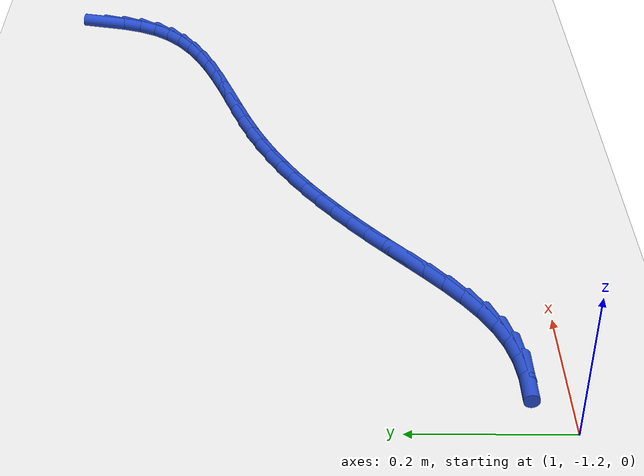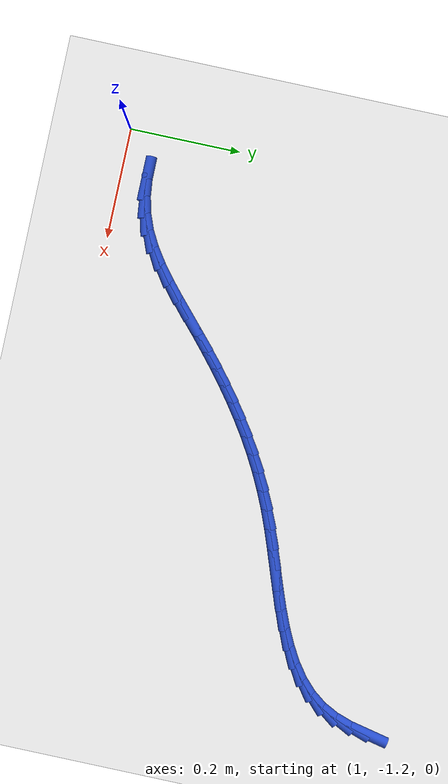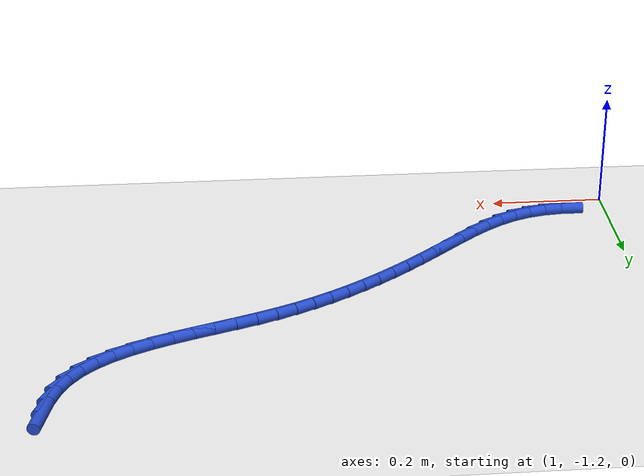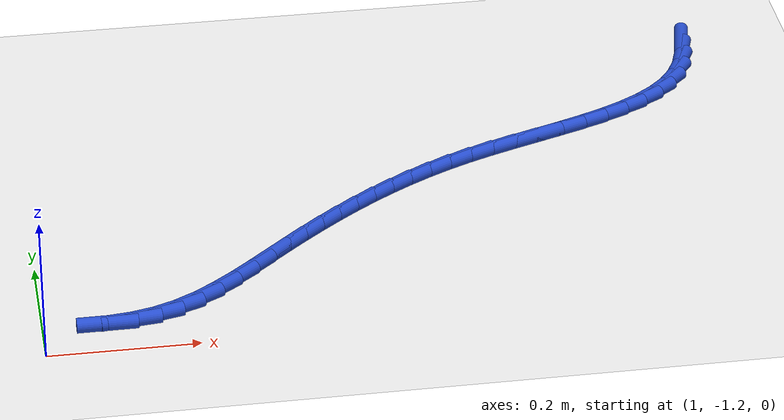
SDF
<sdf version="1.6">
 <world name="default">
  <model name="ground_plane">
   <static>1</static>
   <link name="link">
    <collision name="collision">
     <geometry><plane><normal>0 0 1</normal><size>100 100</size></plane></geometry>
     <surface><friction><ode><mu>100</mu><mu2>50</mu2></ode></friction></surface>
    </collision>
    <visual name="visual">
     <cast_shadows>0</cast_shadows>
     <geometry><plane><normal>0 0 1</normal><size>100 100</size></plane></geometry>
     <material>
      <script><uri>file://media/materials/scripts/gazebo.material</uri><name>Gazebo/WhiteGlow</name></script>
     </material>
    </visual>
   </link>
  </model>
  <model name="line">
   <link name="link_116">
    <pose>1.9686055905843003 -0.5601693737823147 0.01 0 1.57 1.3575423400119502</pose>
    <collision name="collision">
     <geometry><cylinder><radius>0.01</radius><length>0.08</length></cylinder></geometry>
    </collision>
    <visual name="visual">
     <material>
      <script><name>Gazebo/Blue</name><uri>file://media/materials/scripts/gazebo.material</uri></script>
     </material>
     <geometry><cylinder><radius>0.01</radius><length>0.08</length></cylinder></geometry>
    </visual>
   </link>
   <link name="link_117">
    <pose>1.9617405198212623 -0.5918718791710915 0.01 0 1.57 1.2454906339012317</pose>
    <collision name="collision">
     <geometry><cylinder><radius>0.01</radius><length>0.08</length></cylinder></geometry>
    </collision>
    <visual name="visual">
     <material>
      <script><name>Gazebo/Blue</name><uri>file://media/materials/scripts/gazebo.material</uri></script>
     </material>
     <geometry><cylinder><radius>0.01</radius><length>0.08</length></cylinder></geometry>
    </visual>
   </link>
   <link name="link_118">
    <pose>1.9517967211643978 -0.6213534884740581 0.01 0 1.57 1.100402484123581</pose>
    <collision name="collision">
     <geometry><cylinder><radius>0.01</radius><length>0.08</length></cylinder></geometry>
    </collision>
    <visual name="visual">
     <material>
      <script><name>Gazebo/Blue</name><uri>file://media/materials/scripts/gazebo.material</uri></script>
     </material>
     <geometry><cylinder><radius>0.01</radius><length>0.08</length></cylinder></geometry>
    </visual>
   </link>
   <link name="link_119">
    <pose>1.938155547294664 -0.6481818223606184 0.01 0 1.57 0.9271724663885832</pose>
    <collision name="collision">
     <geometry><cylinder><radius>0.01</radius><length>0.08</length></cylinder></geometry>
    </collision>
    <visual name="visual">
     <material>
      <script><name>Gazebo/Blue</name><uri>file://media/materials/scripts/gazebo.material</uri></script>
     </material>
     <geometry><cylinder><radius>0.01</radius><length>0.08</length></cylinder></geometry>
    </visual>
   </link>
   <link name="link_120">
    <pose>1.920293264801803 -0.6719921093922279 0.01 0 1.57 0.7638486334891992</pose>
    <collision name="collision">
     <geometry><cylinder><radius>0.01</radius><length>0.08</length></cylinder></geometry>
    </collision>
    <visual name="visual">
     <material>
      <script><name>Gazebo/Blue</name><uri>file://media/materials/scripts/gazebo.material</uri></script>
     </material>
     <geometry><cylinder><radius>0.01</radius><length>0.08</length></cylinder></geometry>
    </visual>
   </link>
   <link name="link_121">
    <pose>1.89842005497322 -0.692942351096798 0.01 0 1.57 0.6305673358988613</pose>
    <collision name="collision">
     <geometry><cylinder><radius>0.01</radius><length>0.08</length></cylinder></geometry>
    </collision>
    <visual name="visual">
     <material>
      <script><name>Gazebo/Blue</name><uri>file://media/materials/scripts/gazebo.material</uri></script>
     </material>
     <geometry><cylinder><radius>0.01</radius><length>0.08</length></cylinder></geometry>
    </visual>
   </link>
   <link name="link_122">
    <pose>1.873088179550408 -0.7114342154859888 0.01 0 1.57 0.5271572602281289</pose>
    <collision name="collision">
     <geometry><cylinder><radius>0.01</radius><length>0.08</length></cylinder></geometry>
    </collision>
    <visual name="visual">
     <material>
      <script><name>Gazebo/Blue</name><uri>file://media/materials/scripts/gazebo.material</uri></script>
     </material>
     <geometry><cylinder><radius>0.01</radius><length>0.08</length></cylinder></geometry>
    </visual>
   </link>
   <link name="link_123">
    <pose>1.8448518162766303 -0.7278707353539504 0.01 0 1.57 0.4502428053510826</pose>
    <collision name="collision">
     <geometry><cylinder><radius>0.01</radius><length>0.08</length></cylinder></geometry>
    </collision>
    <visual name="visual">
     <material>
      <script><name>Gazebo/Blue</name><uri>file://media/materials/scripts/gazebo.material</uri></script>
     </material>
     <geometry><cylinder><radius>0.01</radius><length>0.08</length></cylinder></geometry>
    </visual>
   </link>
   <link name="link_124">
    <pose>1.8142651428951495 -0.7426549434948332 0.01 0 1.57 0.3958981910060032</pose>
    <collision name="collision">
     <geometry><cylinder><radius>0.01</radius><length>0.08</length></cylinder></geometry>
    </collision>
    <visual name="visual">
     <material>
      <script><name>Gazebo/Blue</name><uri>file://media/materials/scripts/gazebo.material</uri></script>
     </material>
     <geometry><cylinder><radius>0.01</radius><length>0.08</length></cylinder></geometry>
    </visual>
   </link>
   <link name="link_125">
    <pose>1.7818823371492278 -0.7561898727027867 0.01 0 1.57 0.36083923666967826</pose>
    <collision name="collision">
     <geometry><cylinder><radius>0.01</radius><length>0.08</length></cylinder></geometry>
    </collision>
    <visual name="visual">
     <material>
      <script><name>Gazebo/Blue</name><uri>file://media/materials/scripts/gazebo.material</uri></script>
     </material>
     <geometry><cylinder><radius>0.01</radius><length>0.08</length></cylinder></geometry>
    </visual>
   </link>
   <link name="link_126">
    <pose>1.7482575767821278 -0.7688785557719618 0.01 0 1.57 0.3427910943888196</pose>
    <collision name="collision">
     <geometry><cylinder><radius>0.01</radius><length>0.08</length></cylinder></geometry>
    </collision>
    <visual name="visual">
     <material>
      <script><name>Gazebo/Blue</name><uri>file://media/materials/scripts/gazebo.material</uri></script>
     </material>
     <geometry><cylinder><radius>0.01</radius><length>0.08</length></cylinder></geometry>
    </visual>
   </link>
   <link name="link_127">
    <pose>1.7139450395371125 -0.7811240254965082 0.01 0 1.57 0.34052679395526725</pose>
    <collision name="collision">
     <geometry><cylinder><radius>0.01</radius><length>0.08</length></cylinder></geometry>
    </collision>
    <visual name="visual">
     <material>
      <script><name>Gazebo/Blue</name><uri>file://media/materials/scripts/gazebo.material</uri></script>
     </material>
     <geometry><cylinder><radius>0.01</radius><length>0.08</length></cylinder></geometry>
    </visual>
   </link>
   <link name="link_128">
    <pose>1.6794989031574439 -0.793329314670576 0.01 0 1.57 0.3538288000289204</pose>
    <collision name="collision">
     <geometry><cylinder><radius>0.01</radius><length>0.08</length></cylinder></geometry>
    </collision>
    <visual name="visual">
     <material>
      <script><name>Gazebo/Blue</name><uri>file://media/materials/scripts/gazebo.material</uri></script>
     </material>
     <geometry><cylinder><radius>0.01</radius><length>0.08</length></cylinder></geometry>
    </visual>
   </link>
   <link name="link_129">
    <pose>1.6454733453863848 -0.805897456088315 0.01 0 1.57 0.38342863469916616</pose>
    <collision name="collision">
     <geometry><cylinder><radius>0.01</radius><length>0.08</length></cylinder></geometry>
    </collision>
    <visual name="visual">
     <material>
      <script><name>Gazebo/Blue</name><uri>file://media/materials/scripts/gazebo.material</uri></script>
     </material>
     <geometry><cylinder><radius>0.01</radius><length>0.08</length></cylinder></geometry>
    </visual>
   </link>
   <link name="link_130">
    <pose>1.6124210565357042 -0.8192305443370616 0.01 0 1.57 0.42507864372939835</pose>
    <collision name="collision">
     <geometry><cylinder><radius>0.01</radius><length>0.08</length></cylinder></geometry>
    </collision>
    <visual name="visual">
     <material>
      <script><name>Gazebo/Blue</name><uri>file://media/materials/scripts/gazebo.material</uri></script>
     </material>
     <geometry><cylinder><radius>0.01</radius><length>0.08</length></cylinder></geometry>
    </visual>
   </link>
   <link name="link_131">
    <pose>1.5806834942322852 -0.8335974376533065 0.01 0 1.57 0.4674330868601432</pose>
    <collision name="collision">
     <geometry><cylinder><radius>0.01</radius><length>0.08</length></cylinder></geometry>
    </collision>
    <visual name="visual">
     <material>
      <script><name>Gazebo/Blue</name><uri>file://media/materials/scripts/gazebo.material</uri></script>
     </material>
     <geometry><cylinder><radius>0.01</radius><length>0.08</length></cylinder></geometry>
    </visual>
   </link>
   <link name="link_132">
    <pose>1.550173883892242 -0.8489968841004494 0.01 0 1.57 0.5084867903434858</pose>
    <collision name="collision">
     <geometry><cylinder><radius>0.01</radius><length>0.08</length></cylinder></geometry>
    </collision>
    <visual name="visual">
     <material>
      <script><name>Gazebo/Blue</name><uri>file://media/materials/scripts/gazebo.material</uri></script>
     </material>
     <geometry><cylinder><radius>0.01</radius><length>0.08</length></cylinder></geometry>
    </visual>
   </link>
   <link name="link_133">
    <pose>1.5207536429093644 -0.8653949535044155 0.01 0 1.57 0.547647724250191</pose>
    <collision name="collision">
     <geometry><cylinder><radius>0.01</radius><length>0.08</length></cylinder></geometry>
    </collision>
    <visual name="visual">
     <material>
      <script><name>Gazebo/Blue</name><uri>file://media/materials/scripts/gazebo.material</uri></script>
     </material>
     <geometry><cylinder><radius>0.01</radius><length>0.08</length></cylinder></geometry>
    </visual>
   </link>
   <link name="link_134">
    <pose>1.492284188677442 -0.88275771569113 0.01 0 1.57 0.5843732271783775</pose>
    <collision name="collision">
     <geometry><cylinder><radius>0.01</radius><length>0.08</length></cylinder></geometry>
    </collision>
    <visual name="visual">
     <material>
      <script><name>Gazebo/Blue</name><uri>file://media/materials/scripts/gazebo.material</uri></script>
     </material>
     <geometry><cylinder><radius>0.01</radius><length>0.08</length></cylinder></geometry>
    </visual>
   </link>
   <link name="link_135">
    <pose>1.464626938590264 -0.9010512404865182 0.01 0 1.57 0.6181934296219314</pose>
    <collision name="collision">
     <geometry><cylinder><radius>0.01</radius><length>0.08</length></cylinder></geometry>
    </collision>
    <visual name="visual">
     <material>
      <script><name>Gazebo/Blue</name><uri>file://media/materials/scripts/gazebo.material</uri></script>
     </material>
     <geometry><cylinder><radius>0.01</radius><length>0.08</length></cylinder></geometry>
    </visual>
   </link>
   <link name="link_136">
    <pose>1.4376433100416197 -0.9202415977165047 0.01 0 1.57 0.6487270177943738</pose>
    <collision name="collision">
     <geometry><cylinder><radius>0.01</radius><length>0.08</length></cylinder></geometry>
    </collision>
    <visual name="visual">
     <material>
      <script><name>Gazebo/Blue</name><uri>file://media/materials/scripts/gazebo.material</uri></script>
     </material>
     <geometry><cylinder><radius>0.01</radius><length>0.08</length></cylinder></geometry>
    </visual>
   </link>
   <link name="link_137">
    <pose>1.4111947204252981 -0.940294857207015 0.01 0 1.57 0.6756887183087963</pose>
    <collision name="collision">
     <geometry><cylinder><radius>0.01</radius><length>0.08</length></cylinder></geometry>
    </collision>
    <visual name="visual">
     <material>
      <script><name>Gazebo/Blue</name><uri>file://media/materials/scripts/gazebo.material</uri></script>
     </material>
     <geometry><cylinder><radius>0.01</radius><length>0.08</length></cylinder></geometry>
    </visual>
   </link>
   <link name="link_138">
    <pose>1.3851425871350898 -0.9611770887839741 0.01 0 1.57 0.6988892502437476</pose>
    <collision name="collision">
     <geometry><cylinder><radius>0.01</radius><length>0.08</length></cylinder></geometry>
    </collision>
    <visual name="visual">
     <material>
      <script><name>Gazebo/Blue</name><uri>file://media/materials/scripts/gazebo.material</uri></script>
     </material>
     <geometry><cylinder><radius>0.01</radius><length>0.08</length></cylinder></geometry>
    </visual>
   </link>
   <link name="link_139">
    <pose>1.3593483275647833 -0.9828543622733078 0.01 0 1.57 0.7182294029282508</pose>
    <collision name="collision">
     <geometry><cylinder><radius>0.01</radius><length>0.08</length></cylinder></geometry>
    </collision>
    <visual name="visual">
     <material>
      <script><name>Gazebo/Blue</name><uri>file://media/materials/scripts/gazebo.material</uri></script>
     </material>
     <geometry><cylinder><radius>0.01</radius><length>0.08</length></cylinder></geometry>
    </visual>
   </link>
   <link name="link_140">
    <pose>1.3336733591081686 -1.0052927475009403 0.01 0 1.57 0.7329647668794995</pose>
    <collision name="collision">
     <geometry><cylinder><radius>0.01</radius><length>0.08</length></cylinder></geometry>
    </collision>
    <visual name="visual">
     <material>
      <script><name>Gazebo/Blue</name><uri>file://media/materials/scripts/gazebo.material</uri></script>
     </material>
     <geometry><cylinder><radius>0.01</radius><length>0.08</length></cylinder></geometry>
    </visual>
   </link>
   <link name="link_141">
    <pose>1.3079781555197973 -1.028425392340058 0.01 0 1.57 0.7333251198703116</pose>
    <collision name="collision">
     <geometry><cylinder><radius>0.01</radius><length>0.08</length></cylinder></geometry>
    </collision>
    <visual name="visual">
     <material>
      <script><name>Gazebo/Blue</name><uri>file://media/materials/scripts/gazebo.material</uri></script>
     </material>
     <geometry><cylinder><radius>0.01</radius><length>0.08</length></cylinder></geometry>
    </visual>
   </link>
   <link name="link_142">
    <pose>1.2821101501609526 -1.0517304877337006 0.01 0 1.57 0.7122276200090588</pose>
    <collision name="collision">
     <geometry><cylinder><radius>0.01</radius><length>0.08</length></cylinder></geometry>
    </collision>
    <visual name="visual">
     <material>
      <script><name>Gazebo/Blue</name><uri>file://media/materials/scripts/gazebo.material</uri></script>
     </material>
     <geometry><cylinder><radius>0.01</radius><length>0.08</length></cylinder></geometry>
    </visual>
   </link>
   <link name="link_143">
    <pose>1.2559072627154322 -1.07435430875285 0.01 0 1.57 0.6683419759312133</pose>
    <collision name="collision">
     <geometry><cylinder><radius>0.01</radius><length>0.08</length></cylinder></geometry>
    </collision>
    <visual name="visual">
     <material>
      <script><name>Gazebo/Blue</name><uri>file://media/materials/scripts/gazebo.material</uri></script>
     </material>
     <geometry><cylinder><radius>0.01</radius><length>0.08</length></cylinder></geometry>
    </visual>
   </link>
   <link name="link_144">
    <pose>1.229207196628773 -1.0954355862868206 0.01 0 1.57 0.5989983353102758</pose>
    <collision name="collision">
     <geometry><cylinder><radius>0.01</radius><length>0.08</length></cylinder></geometry>
    </collision>
    <visual name="visual">
     <material>
      <script><name>Gazebo/Blue</name><uri>file://media/materials/scripts/gazebo.material</uri></script>
     </material>
     <geometry><cylinder><radius>0.01</radius><length>0.08</length></cylinder></geometry>
    </visual>
   </link>
   <link name="link_145">
    <pose>1.2018476553465105 -1.1141130512249267 0.01 0 1.57 0.5004606893503422</pose>
    <collision name="collision">
     <geometry><cylinder><radius>0.01</radius><length>0.08</length></cylinder></geometry>
    </collision>
    <visual name="visual">
     <material>
      <script><name>Gazebo/Blue</name><uri>file://media/materials/scripts/gazebo.material</uri></script>
     </material>
     <geometry><cylinder><radius>0.01</radius><length>0.08</length></cylinder></geometry>
    </visual>
   </link>
   <link name="link_146">
    <pose>1.1736663423141807 -1.129525434456483 0.01 0 1.57 0.37131438492687996</pose>
    <collision name="collision">
     <geometry><cylinder><radius>0.01</radius><length>0.08</length></cylinder></geometry>
    </collision>
    <visual name="visual">
     <material>
      <script><name>Gazebo/Blue</name><uri>file://media/materials/scripts/gazebo.material</uri></script>
     </material>
     <geometry><cylinder><radius>0.01</radius><length>0.08</length></cylinder></geometry>
    </visual>
   </link>
   <link name="link_147">
    <pose>1.144514822680072 -1.1408763380798594 0.01 0 1.57 0.23492507473466498</pose>
    <collision name="collision">
     <geometry><cylinder><radius>0.01</radius><length>0.08</length></cylinder></geometry>
    </collision>
    <visual name="visual">
     <material>
      <script><name>Gazebo/Blue</name><uri>file://media/materials/scripts/gazebo.material</uri></script>
     </material>
     <geometry><cylinder><radius>0.01</radius><length>0.08</length></cylinder></geometry>
    </visual>
   </link>
   <link name="link_148">
    <pose>1.1143975248860674 -1.1480847472060687 0.01 0 1.57 0.11021198139388556</pose>
    <collision name="collision">
     <geometry><cylinder><radius>0.01</radius><length>0.08</length></cylinder></geometry>
    </collision>
    <visual name="visual">
     <material>
      <script><name>Gazebo/Blue</name><uri>file://media/materials/scripts/gazebo.material</uri></script>
     </material>
     <geometry><cylinder><radius>0.01</radius><length>0.08</length></cylinder></geometry>
    </visual>
   </link>
   <link name="link_149">
    <pose>1.0834137048840549 -1.1515134290222193 0.01 0 1.57 0.000578266357979235</pose>
    <collision name="collision">
     <geometry><cylinder><radius>0.01</radius><length>0.08</length></cylinder></geometry>
    </collision>
    <visual name="visual">
     <material>
      <script><name>Gazebo/Blue</name><uri>file://media/materials/scripts/gazebo.material</uri></script>
     </material>
     <geometry><cylinder><radius>0.01</radius><length>0.08</length></cylinder></geometry>
    </visual>
   </link>
  </model>
 </world>
</sdf>
